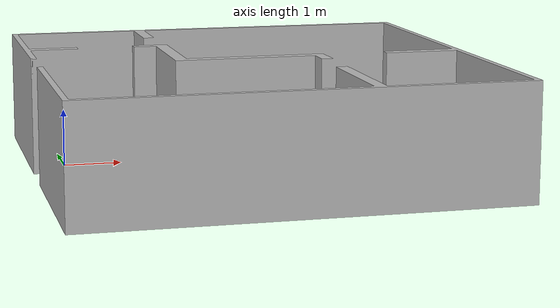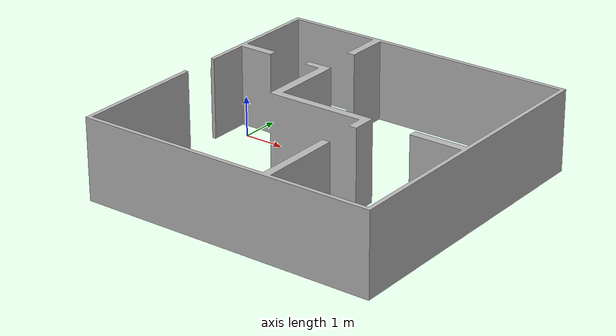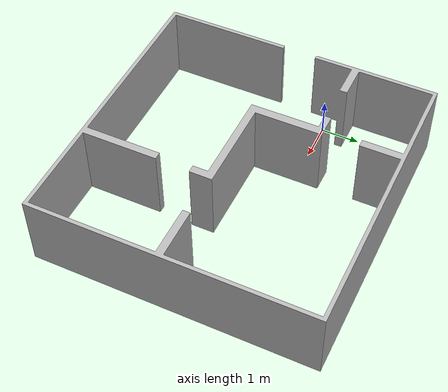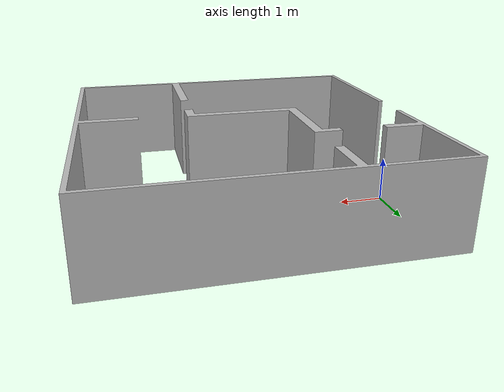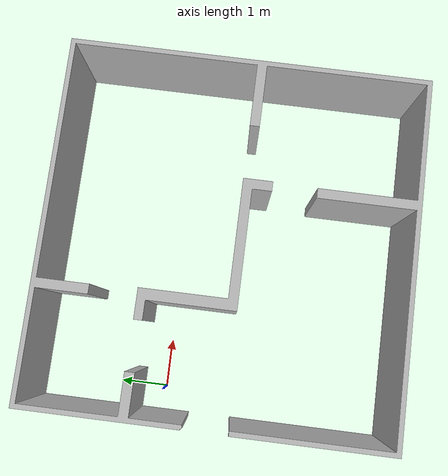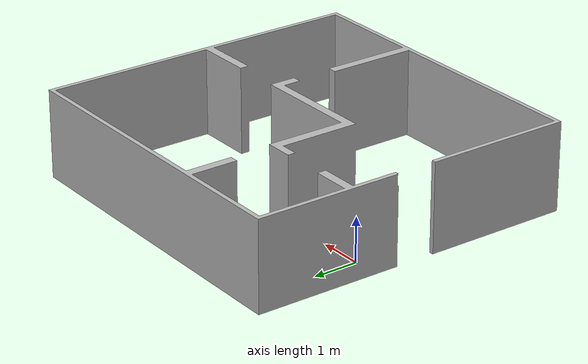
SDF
<?xml version="1.0"?>
<sdf version="1.6">
  <model name="robotics_testlab_B/walls">
    <link name="1_link">
      <collision name="1_col">
        <geometry>
          <mesh>
            <uri>model://robotics_testlab_B/walls/shape/heightmap.stl</uri>
          </mesh>
        </geometry>
      </collision>
      <visual name="1_vis">
        <geometry>
          <mesh>
            <uri>model://robotics_testlab_B/walls/shape/heightmap.stl</uri>
          </mesh>
        </geometry>
      </visual>
      <pose>0 0 0 0 0 0</pose>
    </link>
    <static>true</static>
  </model>
</sdf>
